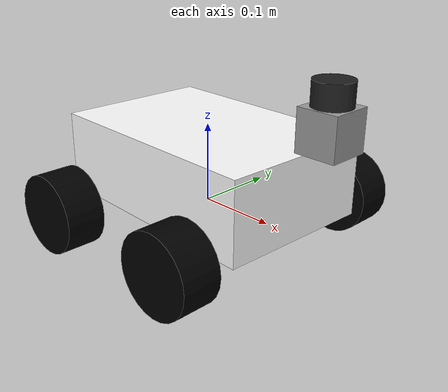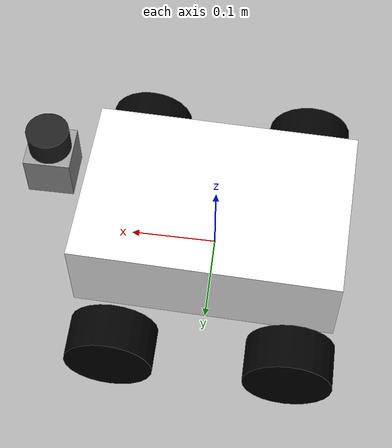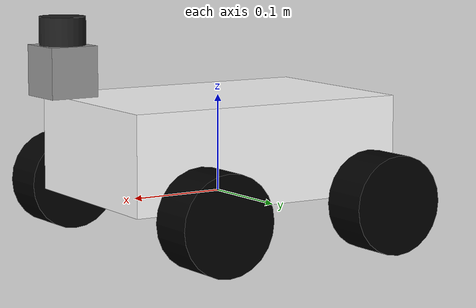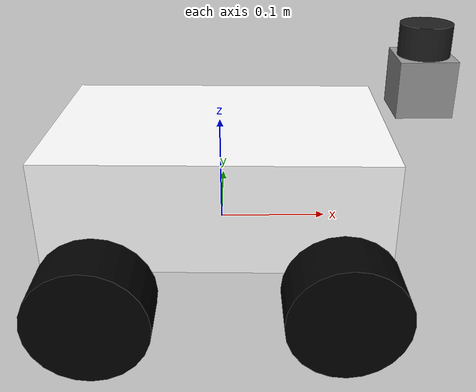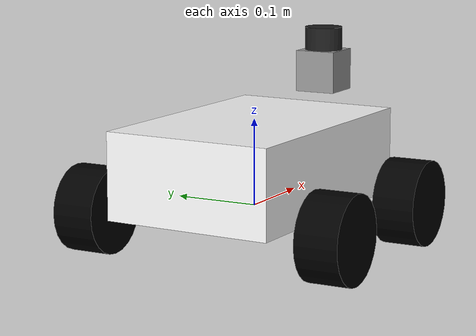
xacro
<?xml version="1.0"?>

<robot xmlns:xacro="http://www.ros.org/wiki/xacro"
 	xmlns:sensor="http://playerstage.sourceforge.net/gazebo/xmlschema/#sensor"
    	xmlns:controller="http://playerstage.sourceforge.net/gazebo/xmlschema/#controller"
    	xmlns:interface="http://playerstage.sourceforge.net/gazebo/xmlschema/#interface"
	name="robot1_xacro">

	<include filename="$(find erratic_description)/urdf/erratic_hokuyo_laser.xacro" />

    	<!-- BASE LASER ATTACHMENT -->
    	<erratic_hokuyo_laser parent="base_link">
        	<origin xyz="0.18 0 0.11" rpy="0 0 0" />
    	</erratic_hokuyo_laser>

	<xacro:property name="length_wheel" value="0.05" />
	<xacro:property name="radius_wheel" value="0.05" />
	<xacro:macro name="default_inertial" params="mass">
               <inertial>
                       <mass value="${mass}" />
                       <inertia ixx="1.0" ixy="0.0" ixz="0.0"
                                iyy="1.0" iyz="0.0"
                                izz="1.0" />
               </inertial>
	</xacro:macro>

	<link name="base_footprint">
   		<visual>
			<geometry>
      				<box size="0.001 0.001 0.001"/>
     			</geometry>
			<origin rpy="0 0 0" xyz="0 0 0"/>
   		</visual>
		<xacro:default_inertial mass="0.0001"/>
 	</link>

	<gazebo reference="base_footprint">
		<material>Gazebo/Green</material>
		<turnGravityOff>false</turnGravityOff>
	</gazebo>

	<joint name="base_footprint_joint" type="fixed">
		<origin xyz="0 0 0" />
		<parent link="base_footprint" />
		<child link="base_link" />
	</joint>

	<link name="base_link">
   		<visual>
			<geometry>
      				<box size="0.2 .3 .1"/>
     			</geometry>
			<origin rpy="0 0 1.54" xyz="0 0 0.05"/>
			<material name="white">
				<color rgba="1 1 1 1"/>
			</material>
   		</visual>
		<collision>
			<geometry>
       				<box size="0.2 .3 0.1"/>
			</geometry>
		</collision>
		<xacro:default_inertial mass="10"/>
 	</link>

 	<link name="wheel_1">
   		<visual>
     			<geometry>
       				<cylinder length="${length_wheel}" radius="${radius_wheel}"/>
     			</geometry>
			<origin rpy="0 0 0" xyz="0 0 0"/>
   			<material name="black">
				<color rgba="0 0 0 1"/>
			</material>
		</visual>
		<collision>
			<geometry>
       				<cylinder length="${length_wheel}" radius="${radius_wheel}"/>
			</geometry>
		</collision>
		<xacro:default_inertial mass="1"/>
 	</link>

 	<link name="wheel_2">
   		<visual>
     			<geometry>
       				<cylinder length="${length_wheel}" radius="${radius_wheel}"/>
     			</geometry>
			<origin rpy="0 0 0" xyz="0 0 0"/>
   			<material name="black"/>
   		</visual>
		<collision>
			<geometry>
       				<cylinder length="${length_wheel}" radius="${radius_wheel}"/>
			</geometry>
		</collision>
		<xacro:default_inertial mass="1"/>

 	</link>

 	<link name="wheel_3">
   		<visual>
     			<geometry>
       				<cylinder length="${length_wheel}" radius="${radius_wheel}"/>
     			</geometry>

			<origin rpy="0 0 0" xyz="0 0 0"/>
   			<material name="black"/>
   		</visual>
		<collision>
			<geometry>
       				<cylinder length="${length_wheel}" radius="${radius_wheel}"/>
			</geometry>
		</collision>
		<xacro:default_inertial mass="1"/>
 	</link>

 	<link name="wheel_4">
   		<visual>
     			<geometry>
       				<cylinder length="${length_wheel}" radius="${radius_wheel}"/>
     			</geometry>
			<origin rpy="0 0 0" xyz="0 0 0" />
   			<material name="black"/>
   		</visual>
		<collision>
			<geometry>
       				<cylinder length="${length_wheel}" radius="${radius_wheel}"/>
			</geometry>
		</collision>
		<xacro:default_inertial mass="1"/>

 	</link>

 <joint name="base_to_wheel1" type="continuous">
   <parent link="base_link"/>
   <child link="wheel_1"/>
   <origin rpy="1.5707 0 0" xyz="0.1 0.15 0"/>
   <axis xyz="0 0 1" />
 </joint>

 <joint name="base_to_wheel2" type="continuous">
   <axis xyz="0 0 1" />
   <anchor xyz="0 0 0" />
   <limit effort="100" velocity="100" />
   <parent link="base_link"/>
   <child link="wheel_2"/>
   <origin rpy="1.5707 0 0" xyz="-0.1 0.15 0"/>
</joint>

 <joint name="base_to_wheel3" type="continuous">
   <parent link="base_link"/>
   <axis xyz="0 0 1" />
   <child link="wheel_3"/>
   <origin rpy="1.5707 0 0" xyz="0.1 -0.15 0"/>
 </joint>

 <joint name="base_to_wheel4" type="continuous">
   <parent link="base_link"/>
   <axis xyz="0 0 1" />
   <child link="wheel_4"/>
   <origin rpy="1.5707 0 0" xyz="-0.1 -0.15 0"/>
 </joint>

  <gazebo>

  	<controller:diffdrive_plugin name="differential_drive_controller" plugin="libdiffdrive_plugin.so">
                <alwaysOn>true</alwaysOn>
                <update>100</update>
                <updateRate>100.0</updateRate>
                <leftJoint>base_to_wheel4</leftJoint>
                <rightJoint>base_to_wheel1</rightJoint>
                <wheelSeparation>0.33</wheelSeparation>
                <wheelDiameter>0.1</wheelDiameter>
                <torque>5</torque>
                <interface:position name="position_iface_0"/>
                <topicName>cmd_vel</topicName>
  	</controller:diffdrive_plugin>

	<controller:gazebo_ros_p3d name="p3d_base_controller" plugin="libgazebo_ros_p3d.so">
                <alwaysOn>true</alwaysOn>
                <updateRate>100.0</updateRate>
                <bodyName>base_link</bodyName>
                <topicName>base_pose_ground_truth</topicName>
                <gaussianNoise>0.01</gaussianNoise>
                <frameName>map</frameName>
                <xyzOffsets>0 0 0</xyzOffsets>
                <rpyOffsets>0 0 0</rpyOffsets>
                <interface:position name="p3d_base_position"/>
            </controller:gazebo_ros_p3d>
  </gazebo>

  <gazebo reference="base_link">
  	<material>Erratic/BlueBrushedAluminum</material>
  </gazebo>

</robot>

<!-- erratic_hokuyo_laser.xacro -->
<robot
    xmlns:sensor="http://playerstage.sourceforge.net/gazebo/xmlschema/#sensor"
    xmlns:controller="http://playerstage.sourceforge.net/gazebo/xmlschema/#controller"
    xmlns:interface="http://playerstage.sourceforge.net/gazebo/xmlschema/#interface">

    <macro name="erratic_hokuyo_laser" params="parent *origin">
        <joint name="laser_base_mount_joint" type="fixed">
            <insert_block name="origin" />
            <parent link="${parent}"/>
            <child link="laser_base_link"/>
        </joint>

        <link name="laser_base_link" type="fixed">
            <inertial>
                <mass value="0.1"/>
                <origin xyz="0 0 0.0"/>
                <inertia ixx="0.1" ixy="0" ixz="0" iyy="0.1" iyz="0" izz="0.1"/>
            </inertial>

            <visual>
                <origin rpy="0 0 0" xyz="0 0 0.025"/>
                <geometry>
                    <box size="0.05 0.05 0.05"/>
                </geometry>
            </visual>

            <collision>
                <origin rpy="0 0 0" xyz="0 0 0.025"/>
                <geometry>
                    <box size="0.05 0.05 0.05"/>
                </geometry>
            </collision>
        </link>

        <joint name="base_scan_joint" type="fixed" >
            <origin xyz="0 0 0.05" rpy="0 0 0" />
            <parent link="laser_base_link" />
            <child link="base_scan_link"/>
        </joint>

        <link name="base_scan_link" type="laser">
            <inertial>
                <mass value="0.1"/>
                <origin xyz="0 0 0.0"/>
                <inertia ixx="0.1" ixy="0" ixz="0" iyy="0.1" iyz="0" izz="0.1"/>
            </inertial>

            <visual>
                <origin rpy="0 0 0" xyz="0 0 0.014"/>
                <geometry>
                    <cylinder radius="0.0229" length="0.028"/>
                </geometry>
            </visual>

            <collision>
                <origin rpy="0 0 0" xyz="0 0 0.014"/>
                <geometry>
                    <cylinder radius="0.0229" length="0.028"/>
                </geometry>
            </collision>
        </link>

        <gazebo reference="base_scan_link">
            <sensor:ray name="laser">
                <rayCount>683</rayCount>
                <rangeCount>683</rangeCount>
                <laserCount>1</laserCount>

                <origin>0.0 0.0 0.0</origin>
                <displayRays>false</displayRays>

                <minAngle>-135</minAngle>
                <maxAngle> 135</maxAngle>

                <minRange>0.06</minRange>
                <maxRange>4.0</maxRange>
                <resRange>0.001</resRange>
                <updateRate>10.0</updateRate>

                <controller:gazebo_ros_laser name="gazebo_ros_base_scan_link_controller" plugin="libgazebo_ros_laser.so">
                    <gaussianNoise>0.005</gaussianNoise>
                    <alwaysOn>true</alwaysOn>
                    <updateRate>10.0</updateRate>
                    <topicName>base_scan/scan</topicName>
                    <frameName>base_scan_link</frameName>
                    <interface:laser name="gazebo_ros_base_scan_link_iface"/>
                </controller:gazebo_ros_laser>
            </sensor:ray>
        </gazebo>

        <gazebo reference="laser_base_link">
            <material>Erratic/Grey</material>
        </gazebo>

        <gazebo reference="base_scan_link">
            <material>Erratic/Black</material>
        </gazebo>
    </macro>
</robot>
